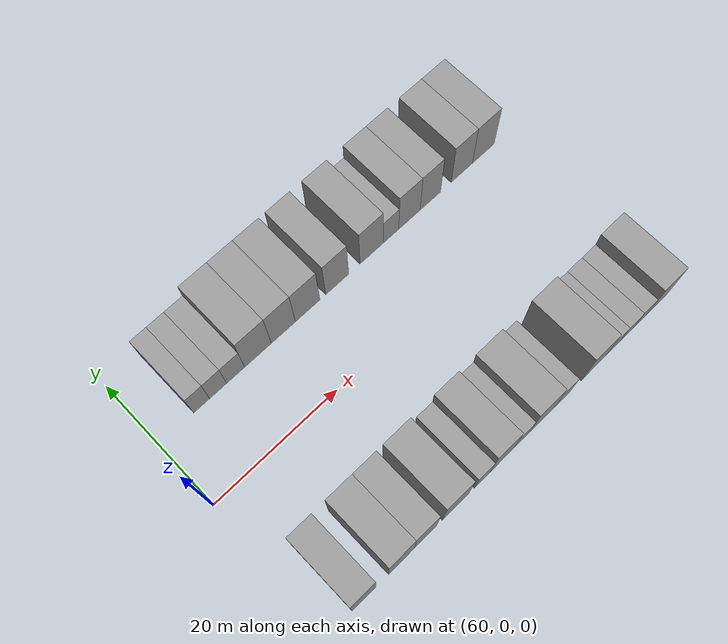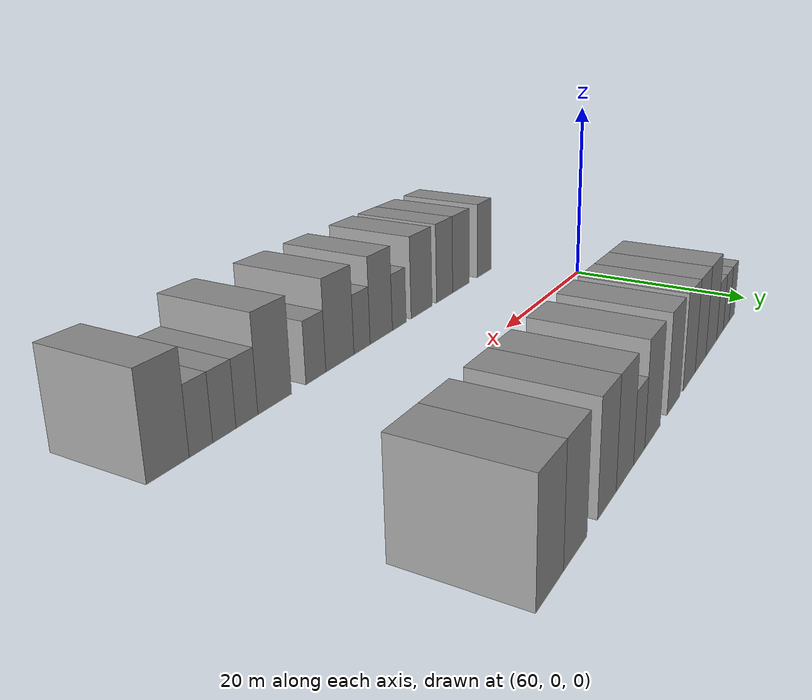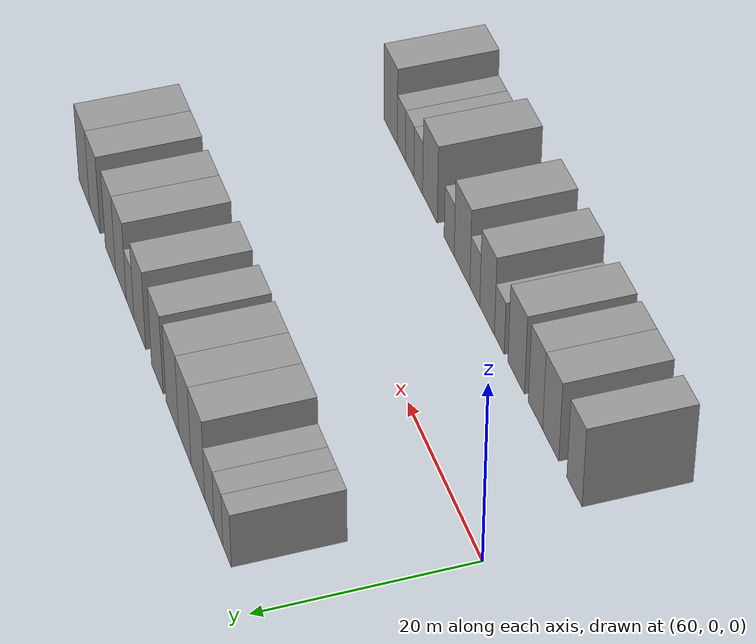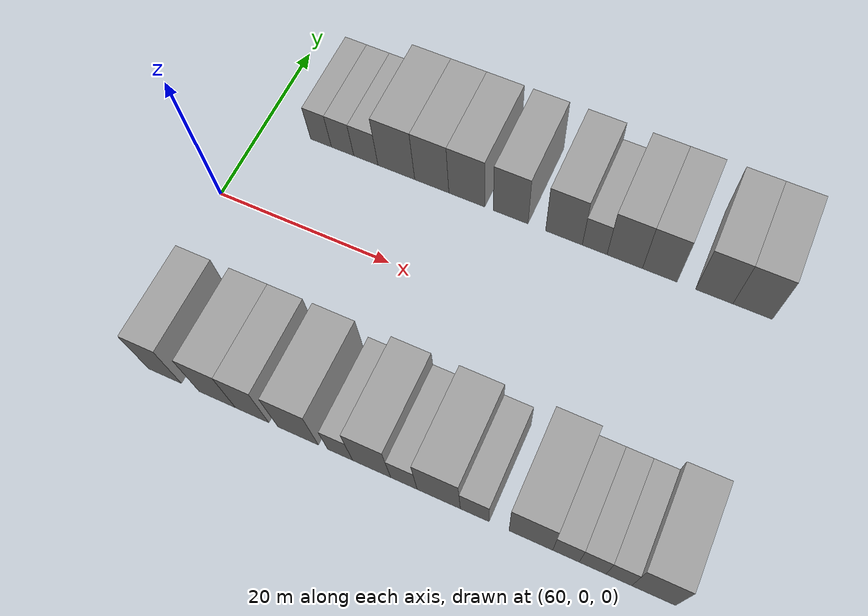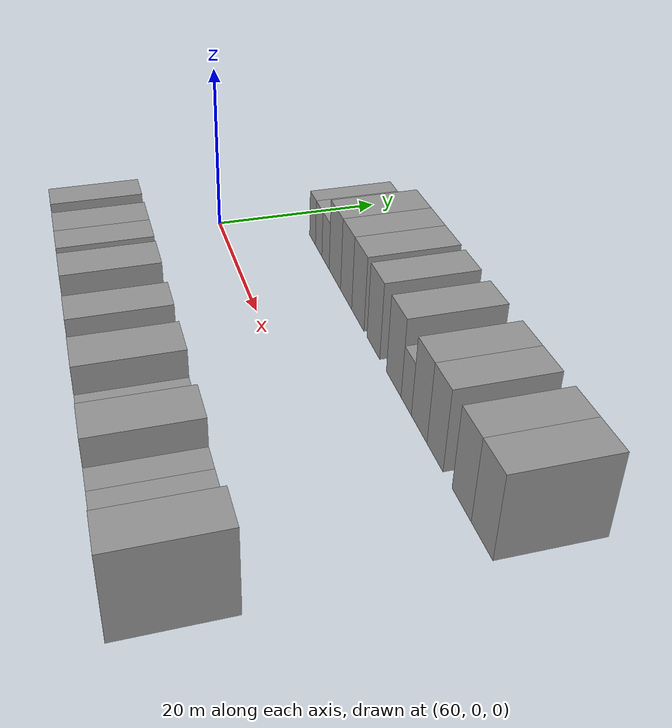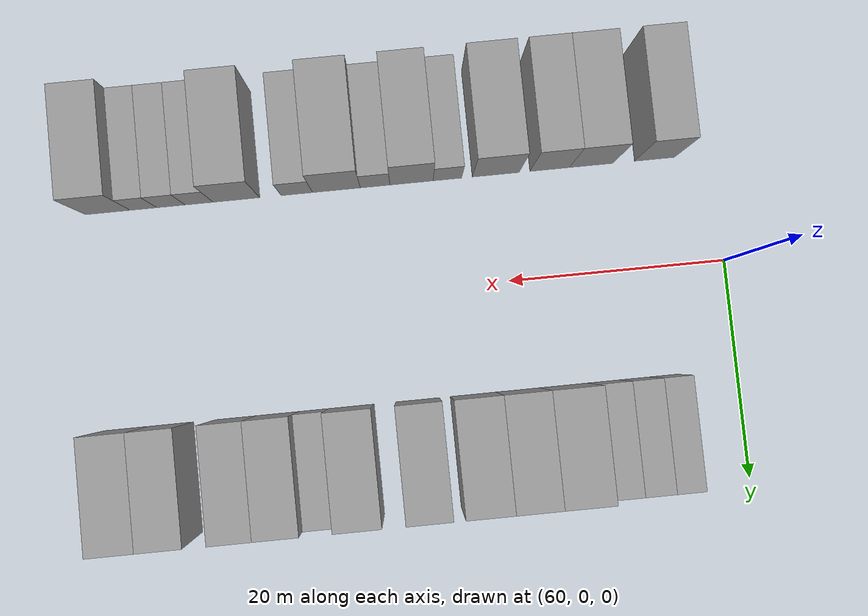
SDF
<sdf version="1.6">
 <world name="default">
  <model name="building_14">
   <static>1</static>
   <pose>66.8152 15.0000 0 0.000000 0.000000 1.570796</pose>
   <link name="link">
    <pose>0 0 3.00 0 0 0</pose>
    <collision name="collision"><geometry><box><size>10.0000 2.5653 6.0000</size></box></geometry></collision>
    <visual name="visual">
     <cast_shadows>0</cast_shadows>
     <geometry><box><size>10.0000 2.5653 6.0000</size></box></geometry>
     <material>
      <script>
       <uri>model://grey_wall/materials/scripts</uri>
       <uri>model://grey_wall/materials/textures</uri>
       <name>vrc/grey_wall</name>
      </script>
     </material>
    </visual>
   </link>
  </model>
  <model name="building_15">
   <static>1</static>
   <pose>69.4661 15.0000 0 0.000000 0.000000 1.570796</pose>
   <link name="link">
    <pose>0 0 3.00 0 0 0</pose>
    <collision name="collision"><geometry><box><size>10.0000 2.7366 6.0000</size></box></geometry></collision>
    <visual name="visual">
     <cast_shadows>0</cast_shadows>
     <geometry><box><size>10.0000 2.7366 6.0000</size></box></geometry>
     <material>
      <script>
       <uri>model://grey_wall/materials/scripts</uri>
       <uri>model://grey_wall/materials/textures</uri>
       <name>vrc/grey_wall</name>
      </script>
     </material>
    </visual>
   </link>
  </model>
  <model name="building_16">
   <static>1</static>
   <pose>72.3064 15.0000 0 0.000000 0.000000 1.570796</pose>
   <link name="link">
    <pose>0 0 3.00 0 0 0</pose>
    <collision name="collision"><geometry><box><size>10.0000 2.9440 6.0000</size></box></geometry></collision>
    <visual name="visual">
     <cast_shadows>0</cast_shadows>
     <geometry><box><size>10.0000 2.9440 6.0000</size></box></geometry>
     <material>
      <script>
       <uri>model://grey_wall/materials/scripts</uri>
       <uri>model://grey_wall/materials/textures</uri>
       <name>vrc/grey_wall</name>
      </script>
     </material>
    </visual>
   </link>
  </model>
  <model name="building_17">
   <static>1</static>
   <pose>75.9872 15.0000 0 0.000000 0.000000 1.570796</pose>
   <link name="link">
    <pose>0 0 4.50 0 0 0</pose>
    <collision name="collision"><geometry><box><size>10.0000 4.4175 9.0000</size></box></geometry></collision>
    <visual name="visual">
     <cast_shadows>0</cast_shadows>
     <geometry><box><size>10.0000 4.4175 9.0000</size></box></geometry>
     <material>
      <script>
       <uri>model://grey_wall/materials/scripts</uri>
       <uri>model://grey_wall/materials/textures</uri>
       <name>vrc/grey_wall</name>
      </script>
     </material>
    </visual>
   </link>
  </model>
  <model name="building_18">
   <static>1</static>
   <pose>80.2217 15.0000 0 0.000000 0.000000 1.570796</pose>
   <link name="link">
    <pose>0 0 4.50 0 0 0</pose>
    <collision name="collision"><geometry><box><size>10.0000 4.0515 9.0000</size></box></geometry></collision>
    <visual name="visual">
     <cast_shadows>0</cast_shadows>
     <geometry><box><size>10.0000 4.0515 9.0000</size></box></geometry>
     <material>
      <script>
       <uri>model://grey_wall/materials/scripts</uri>
       <uri>model://grey_wall/materials/textures</uri>
       <name>vrc/grey_wall</name>
      </script>
     </material>
    </visual>
   </link>
  </model>
  <model name="building_19">
   <static>1</static>
   <pose>84.3455 15.0000 0 0.000000 0.000000 1.570796</pose>
   <link name="link">
    <pose>0 0 4.50 0 0 0</pose>
    <collision name="collision"><geometry><box><size>10.0000 4.1960 9.0000</size></box></geometry></collision>
    <visual name="visual">
     <cast_shadows>0</cast_shadows>
     <geometry><box><size>10.0000 4.1960 9.0000</size></box></geometry>
     <material>
      <script>
       <uri>model://grey_wall/materials/scripts</uri>
       <uri>model://grey_wall/materials/textures</uri>
       <name>vrc/grey_wall</name>
      </script>
     </material>
    </visual>
   </link>
  </model>
  <model name="building_20">
   <static>1</static>
   <pose>89.4434 15.0000 0 0.000000 0.000000 1.570796</pose>
   <link name="link">
    <pose>0 0 4.50 0 0 0</pose>
    <collision name="collision"><geometry><box><size>10.0000 4.0000 9.0000</size></box></geometry></collision>
    <visual name="visual">
     <cast_shadows>0</cast_shadows>
     <geometry><box><size>10.0000 4.0000 9.0000</size></box></geometry>
     <material>
      <script>
       <uri>model://grey_wall/materials/scripts</uri>
       <uri>model://grey_wall/materials/textures</uri>
       <name>vrc/grey_wall</name>
      </script>
     </material>
    </visual>
   </link>
  </model>
  <model name="building_21">
   <static>1</static>
   <pose>95.5154 15.0000 0 0.000000 0.000000 1.570796</pose>
   <link name="link">
    <pose>0 0 4.50 0 0 0</pose>
    <collision name="collision"><geometry><box><size>10.0000 4.1440 9.0000</size></box></geometry></collision>
    <visual name="visual">
     <cast_shadows>0</cast_shadows>
     <geometry><box><size>10.0000 4.1440 9.0000</size></box></geometry>
     <material>
      <script>
       <uri>model://grey_wall/materials/scripts</uri>
       <uri>model://grey_wall/materials/textures</uri>
       <name>vrc/grey_wall</name>
      </script>
     </material>
    </visual>
   </link>
  </model>
  <model name="building_22">
   <static>1</static>
   <pose>98.9690 15.0000 0 0.000000 0.000000 1.570796</pose>
   <link name="link">
    <pose>0 0 3.00 0 0 0</pose>
    <collision name="collision"><geometry><box><size>10.0000 2.7631 6.0000</size></box></geometry></collision>
    <visual name="visual">
     <cast_shadows>0</cast_shadows>
     <geometry><box><size>10.0000 2.7631 6.0000</size></box></geometry>
     <material>
      <script>
       <uri>model://grey_wall/materials/scripts</uri>
       <uri>model://grey_wall/materials/textures</uri>
       <name>vrc/grey_wall</name>
      </script>
     </material>
    </visual>
   </link>
  </model>
  <model name="building_23">
   <static>1</static>
   <pose>102.3103 15.0000 0 0.000000 0.000000 1.570796</pose>
   <link name="link">
    <pose>0 0 4.50 0 0 0</pose>
    <collision name="collision"><geometry><box><size>10.0000 3.9195 9.0000</size></box></geometry></collision>
    <visual name="visual">
     <cast_shadows>0</cast_shadows>
     <geometry><box><size>10.0000 3.9195 9.0000</size></box></geometry>
     <material>
      <script>
       <uri>model://grey_wall/materials/scripts</uri>
       <uri>model://grey_wall/materials/textures</uri>
       <name>vrc/grey_wall</name>
      </script>
     </material>
    </visual>
   </link>
  </model>
  <model name="building_24">
   <static>1</static>
   <pose>106.1572 15.0000 0 0.000000 0.000000 1.570796</pose>
   <link name="link">
    <pose>0 0 4.50 0 0 0</pose>
    <collision name="collision"><geometry><box><size>10.0000 3.7744 9.0000</size></box></geometry></collision>
    <visual name="visual">
     <cast_shadows>0</cast_shadows>
     <geometry><box><size>10.0000 3.7744 9.0000</size></box></geometry>
     <material>
      <script>
       <uri>model://grey_wall/materials/scripts</uri>
       <uri>model://grey_wall/materials/textures</uri>
       <name>vrc/grey_wall</name>
      </script>
     </material>
    </visual>
   </link>
  </model>
  <model name="building_25">
   <static>1</static>
   <pose>112.0413 15.0000 0 0.000000 0.000000 1.570796</pose>
   <link name="link">
    <pose>0 0 4.50 0 0 0</pose>
    <collision name="collision"><geometry><box><size>10.0000 3.9937 9.0000</size></box></geometry></collision>
    <visual name="visual">
     <cast_shadows>0</cast_shadows>
     <geometry><box><size>10.0000 3.9937 9.0000</size></box></geometry>
     <material>
      <script>
       <uri>model://grey_wall/materials/scripts</uri>
       <uri>model://grey_wall/materials/textures</uri>
       <name>vrc/grey_wall</name>
      </script>
     </material>
    </visual>
   </link>
  </model>
  <model name="building_26">
   <static>1</static>
   <pose>116.1255 15.0000 0 0.000000 0.000000 1.570796</pose>
   <link name="link">
    <pose>0 0 4.50 0 0 0</pose>
    <collision name="collision"><geometry><box><size>10.0000 4.1748 9.0000</size></box></geometry></collision>
    <visual name="visual">
     <cast_shadows>0</cast_shadows>
     <geometry><box><size>10.0000 4.1748 9.0000</size></box></geometry>
     <material>
      <script>
       <uri>model://grey_wall/materials/scripts</uri>
       <uri>model://grey_wall/materials/textures</uri>
       <name>vrc/grey_wall</name>
      </script>
     </material>
    </visual>
   </link>
  </model>
  <model name="building_67">
   <static>1</static>
   <pose>65.3320 -15.0000 0 0.000000 0.000000 1.570796</pose>
   <link name="link">
    <pose>0 0 4.50 0 0 0</pose>
    <collision name="collision"><geometry><box><size>10.0000 3.7531 9.0000</size></box></geometry></collision>
    <visual name="visual">
     <cast_shadows>0</cast_shadows>
     <geometry><box><size>10.0000 3.7531 9.0000</size></box></geometry>
     <material>
      <script>
       <uri>model://grey_wall/materials/scripts</uri>
       <uri>model://grey_wall/materials/textures</uri>
       <name>vrc/grey_wall</name>
      </script>
     </material>
    </visual>
   </link>
  </model>
  <model name="building_68">
   <static>1</static>
   <pose>71.2526 -15.0000 0 0.000000 0.000000 1.570796</pose>
   <link name="link">
    <pose>0 0 4.50 0 0 0</pose>
    <collision name="collision"><geometry><box><size>10.0000 4.0881 9.0000</size></box></geometry></collision>
    <visual name="visual">
     <cast_shadows>0</cast_shadows>
     <geometry><box><size>10.0000 4.0881 9.0000</size></box></geometry>
     <material>
      <script>
       <uri>model://grey_wall/materials/scripts</uri>
       <uri>model://grey_wall/materials/textures</uri>
       <name>vrc/grey_wall</name>
      </script>
     </material>
    </visual>
   </link>
  </model>
  <model name="building_69">
   <static>1</static>
   <pose>75.1438 -15.0000 0 0.000000 0.000000 1.570796</pose>
   <link name="link">
    <pose>0 0 4.50 0 0 0</pose>
    <collision name="collision"><geometry><box><size>10.0000 3.6941 9.0000</size></box></geometry></collision>
    <visual name="visual">
     <cast_shadows>0</cast_shadows>
     <geometry><box><size>10.0000 3.6941 9.0000</size></box></geometry>
     <material>
      <script>
       <uri>model://grey_wall/materials/scripts</uri>
       <uri>model://grey_wall/materials/textures</uri>
       <name>vrc/grey_wall</name>
      </script>
     </material>
    </visual>
   </link>
  </model>
  <model name="building_70">
   <static>1</static>
   <pose>80.1816 -15.0000 0 0.000000 0.000000 1.570796</pose>
   <link name="link">
    <pose>0 0 4.50 0 0 0</pose>
    <collision name="collision"><geometry><box><size>10.0000 4.3816 9.0000</size></box></geometry></collision>
    <visual name="visual">
     <cast_shadows>0</cast_shadows>
     <geometry><box><size>10.0000 4.3816 9.0000</size></box></geometry>
     <material>
      <script>
       <uri>model://grey_wall/materials/scripts</uri>
       <uri>model://grey_wall/materials/textures</uri>
       <name>vrc/grey_wall</name>
      </script>
     </material>
    </visual>
   </link>
  </model>
  <model name="building_71">
   <static>1</static>
   <pose>84.7044 -15.0000 0 0.000000 0.000000 1.570796</pose>
   <link name="link">
    <pose>0 0 3.00 0 0 0</pose>
    <collision name="collision"><geometry><box><size>10.0000 2.6641 6.0000</size></box></geometry></collision>
    <visual name="visual">
     <cast_shadows>0</cast_shadows>
     <geometry><box><size>10.0000 2.6641 6.0000</size></box></geometry>
     <material>
      <script>
       <uri>model://grey_wall/materials/scripts</uri>
       <uri>model://grey_wall/materials/textures</uri>
       <name>vrc/grey_wall</name>
      </script>
     </material>
    </visual>
   </link>
  </model>
  <model name="building_72">
   <static>1</static>
   <pose>88.0471 -15.0000 0 0.000000 0.000000 1.570796</pose>
   <link name="link">
    <pose>0 0 4.50 0 0 0</pose>
    <collision name="collision"><geometry><box><size>10.0000 4.0213 9.0000</size></box></geometry></collision>
    <visual name="visual">
     <cast_shadows>0</cast_shadows>
     <geometry><box><size>10.0000 4.0213 9.0000</size></box></geometry>
     <material>
      <script>
       <uri>model://grey_wall/materials/scripts</uri>
       <uri>model://grey_wall/materials/textures</uri>
       <name>vrc/grey_wall</name>
      </script>
     </material>
    </visual>
   </link>
  </model>
  <model name="building_73">
   <static>1</static>
   <pose>91.4347 -15.0000 0 0.000000 0.000000 1.570796</pose>
   <link name="link">
    <pose>0 0 3.00 0 0 0</pose>
    <collision name="collision"><geometry><box><size>10.0000 2.7540 6.0000</size></box></geometry></collision>
    <visual name="visual">
     <cast_shadows>0</cast_shadows>
     <geometry><box><size>10.0000 2.7540 6.0000</size></box></geometry>
     <material>
      <script>
       <uri>model://grey_wall/materials/scripts</uri>
       <uri>model://grey_wall/materials/textures</uri>
       <name>vrc/grey_wall</name>
      </script>
     </material>
    </visual>
   </link>
  </model>
  <model name="building_74">
   <static>1</static>
   <pose>95.0347 -15.0000 0 0.000000 0.000000 1.570796</pose>
   <link name="link">
    <pose>0 0 4.50 0 0 0</pose>
    <collision name="collision"><geometry><box><size>10.0000 4.4460 9.0000</size></box></geometry></collision>
    <visual name="visual">
     <cast_shadows>0</cast_shadows>
     <geometry><box><size>10.0000 4.4460 9.0000</size></box></geometry>
     <material>
      <script>
       <uri>model://grey_wall/materials/scripts</uri>
       <uri>model://grey_wall/materials/textures</uri>
       <name>vrc/grey_wall</name>
      </script>
     </material>
    </visual>
   </link>
  </model>
  <model name="building_75">
   <static>1</static>
   <pose>98.7172 -15.0000 0 0.000000 0.000000 1.570796</pose>
   <link name="link">
    <pose>0 0 3.00 0 0 0</pose>
    <collision name="collision"><geometry><box><size>10.0000 2.9191 6.0000</size></box></geometry></collision>
    <visual name="visual">
     <cast_shadows>0</cast_shadows>
     <geometry><box><size>10.0000 2.9191 6.0000</size></box></geometry>
     <material>
      <script>
       <uri>model://grey_wall/materials/scripts</uri>
       <uri>model://grey_wall/materials/textures</uri>
       <name>vrc/grey_wall</name>
      </script>
     </material>
    </visual>
   </link>
  </model>
  <model name="building_76">
   <static>1</static>
   <pose>104.3505 -15.0000 0 0.000000 0.000000 1.570796</pose>
   <link name="link">
    <pose>0 0 4.50 0 0 0</pose>
    <collision name="collision"><geometry><box><size>10.0000 4.3474 9.0000</size></box></geometry></collision>
    <visual name="visual">
     <cast_shadows>0</cast_shadows>
     <geometry><box><size>10.0000 4.3474 9.0000</size></box></geometry>
     <material>
      <script>
       <uri>model://grey_wall/materials/scripts</uri>
       <uri>model://grey_wall/materials/textures</uri>
       <name>vrc/grey_wall</name>
      </script>
     </material>
    </visual>
   </link>
  </model>
  <model name="building_77">
   <static>1</static>
   <pose>107.8252 -15.0000 0 0.000000 0.000000 1.570796</pose>
   <link name="link">
    <pose>0 0 3.00 0 0 0</pose>
    <collision name="collision"><geometry><box><size>10.0000 2.6021 6.0000</size></box></geometry></collision>
    <visual name="visual">
     <cast_shadows>0</cast_shadows>
     <geometry><box><size>10.0000 2.6021 6.0000</size></box></geometry>
     <material>
      <script>
       <uri>model://grey_wall/materials/scripts</uri>
       <uri>model://grey_wall/materials/textures</uri>
       <name>vrc/grey_wall</name>
      </script>
     </material>
    </visual>
   </link>
  </model>
  <model name="building_78">
   <static>1</static>
   <pose>110.4353 -15.0000 0 0.000000 0.000000 1.570796</pose>
   <link name="link">
    <pose>0 0 3.00 0 0 0</pose>
    <collision name="collision"><geometry><box><size>10.0000 2.6181 6.0000</size></box></geometry></collision>
    <visual name="visual">
     <cast_shadows>0</cast_shadows>
     <geometry><box><size>10.0000 2.6181 6.0000</size></box></geometry>
     <material>
      <script>
       <uri>model://grey_wall/materials/scripts</uri>
       <uri>model://grey_wall/materials/textures</uri>
       <name>vrc/grey_wall</name>
      </script>
     </material>
    </visual>
   </link>
  </model>
  <model name="building_79">
   <static>1</static>
   <pose>112.9795 -15.0000 0 0.000000 0.000000 1.570796</pose>
   <link name="link">
    <pose>0 0 3.00 0 0 0</pose>
    <collision name="collision"><geometry><box><size>10.0000 2.4704 6.0000</size></box></geometry></collision>
    <visual name="visual">
     <cast_shadows>0</cast_shadows>
     <geometry><box><size>10.0000 2.4704 6.0000</size></box></geometry>
     <material>
      <script>
       <uri>model://grey_wall/materials/scripts</uri>
       <uri>model://grey_wall/materials/textures</uri>
       <name>vrc/grey_wall</name>
      </script>
     </material>
    </visual>
   </link>
  </model>
  <model name="building_80">
   <static>1</static>
   <pose>116.2986 -15.0000 0 0.000000 0.000000 1.570796</pose>
   <link name="link">
    <pose>0 0 4.50 0 0 0</pose>
    <collision name="collision"><geometry><box><size>10.0000 4.1677 9.0000</size></box></geometry></collision>
    <visual name="visual">
     <cast_shadows>0</cast_shadows>
     <geometry><box><size>10.0000 4.1677 9.0000</size></box></geometry>
     <material>
      <script>
       <uri>model://grey_wall/materials/scripts</uri>
       <uri>model://grey_wall/materials/textures</uri>
       <name>vrc/grey_wall</name>
      </script>
     </material>
    </visual>
   </link>
  </model>
 </world>
</sdf>
